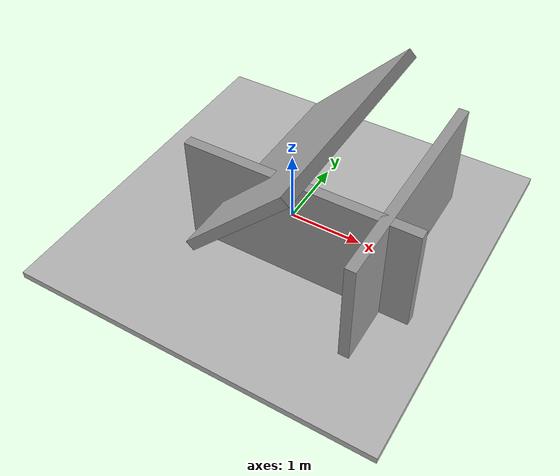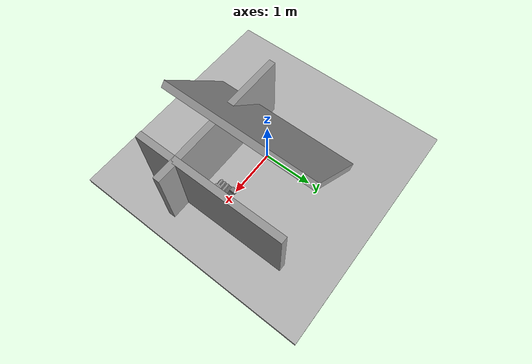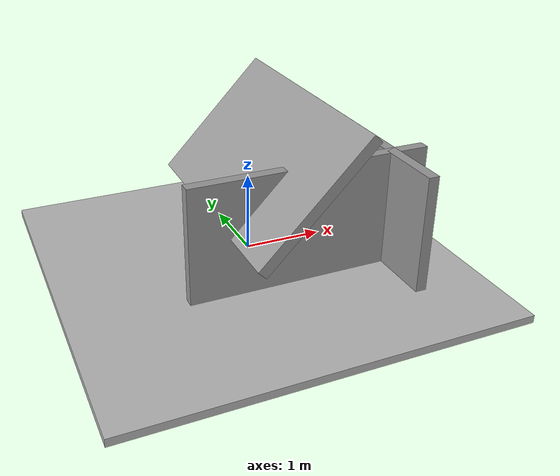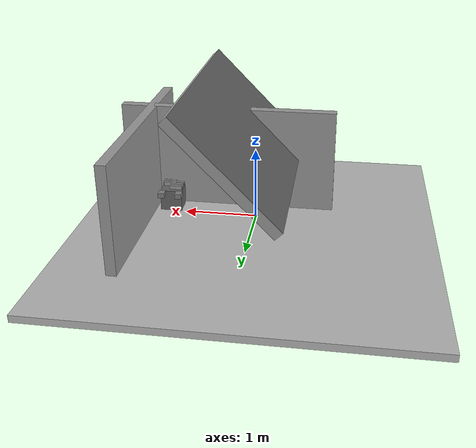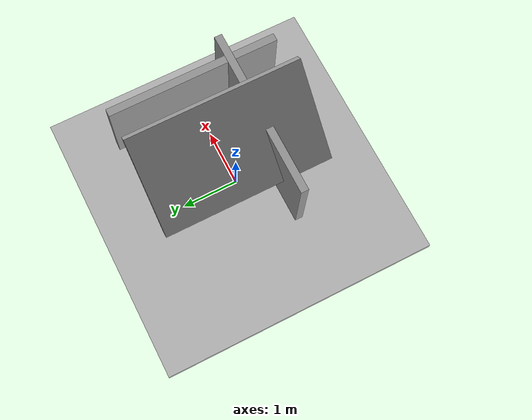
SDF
<?xml version="1.0" ?>
<sdf version="1.6">
  <world name="default">
    <include>
      <uri>model://sun</uri>
    </include>

    <physics name="ode" type="ode">
      <ode>
        <constraints>
          <contact_max_correcting_vel>0</contact_max_correcting_vel>
        </constraints>
      </ode>
      <max_step_size>0.001</max_step_size>
      <real_time_update_rate>1000</real_time_update_rate>
    </physics>

    <plugin name="collision_map_plugin" filename="libcollision_map_plugin.so">
      <frameId>base_link</frameId>
    </plugin>
    <plugin name="arm_gazebo_ros" filename="libarm_gazebo_ros_plugin.so"/>

    <model name="moveit_plugin_model">
      <plugin name="gazebo_ros_moveit_planning_scene" filename="libgazebo_ros_moveit_planning_scene.so">
        <robotName>husky</robotName>
        <robotNamespace>hdt_michigan</robotNamespace>
        <!--  This must be the same as the root frame of the robot you're using -->
        <frameId>base_link</frameId>
      </plugin>
    </model>

    <include>
      <pose>0 0 -0.15 0 0 0</pose>
      <uri>model://box_floor</uri>
    </include>

    <include>
      <name>right_wall</name>
      <uri>model://fake_wall</uri>
      <pose>0.5 -0.7 0.4 0 0 0</pose>
    </include>

    <include>
      <name>back_wall</name>
      <uri>model://fake_wall</uri>
      <pose>0.17 0 1.25 0.77 0 1.5707</pose>
    </include>

    <include>
      <name>front_wall</name>
      <uri>model://fake_wall</uri>
      <pose>1.6 0 0.4 0 0 1.5707</pose>
    </include>

    <include>
      <name>engine4</name>
      <uri>model://car_engine4</uri>
      <pose>1.22 -0.14 0.10 0.017 0 -1.5377</pose>
    </include>

  </world>
</sdf>

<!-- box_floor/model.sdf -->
<sdf version='1.7'>
  <model name='box_floor'>
    <link name='link'>
      <pose>0 0 -0.05 0 0 0</pose>
      <inertial>
        <mass>1</mass>
        <inertia>
          <ixx>0.166667</ixx>
          <ixy>0</ixy>
          <ixz>0</ixz>
          <iyy>0.166667</iyy>
          <iyz>0</iyz>
          <izz>0.166667</izz>
        </inertia>
      </inertial>
      <visual name='visual'>
        <geometry>
          <box>
            <size>5 5 0.1</size>
          </box>
        </geometry>
        <material>
            <script>
                <uri>model://my_ground_plane/concrete.material</uri>
                <name>ConcreteTexture</name>
            </script>
        </material>
      </visual>
      <collision name='collision'>
        <geometry>
          <box>
            <size>5 5 0.1</size>
          </box>
        </geometry>
      </collision>
    </link>
    <static>1</static>
    <allow_auto_disable>1</allow_auto_disable>
  </model>
</sdf>

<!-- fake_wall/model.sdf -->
<sdf version='1.7'>
  <model name='fake_wall'>
    <link name='unit_box::link'>
      <inertial>
        <mass>1</mass>
        <inertia>
          <ixx>0.166667</ixx>
          <ixy>0</ixy>
          <ixz>0</ixz>
          <iyy>0.166667</iyy>
          <iyz>0</iyz>
          <izz>0.166667</izz>
        </inertia>
        <pose>0 0 0 0 -0 0</pose>
      </inertial>
      <self_collide>0</self_collide>
      <enable_wind>0</enable_wind>
      <kinematic>1</kinematic>
      <pose>0 0 0 0 -0 0</pose>
      <visual name='visual'>
        <geometry>
          <box>
            <size>3.10724 0.140567 1.89855</size>
          </box>
        </geometry>
        <material>
          <script>
            <name>Gazebo/Grey</name>
            <uri>file://media/materials/scripts/gazebo.material</uri>
          </script>
          <shader type='pixel'/>
        </material>
        <pose>0 0 0 0 -0 0</pose>
        <transparency>0</transparency>
        <cast_shadows>1</cast_shadows>
      </visual>
      <collision name='collision'>
        <laser_retro>0</laser_retro>
        <max_contacts>10</max_contacts>
        <pose>0 0 0 0 -0 0</pose>
        <geometry>
          <box>
            <size>3.10724 0.140567 1.89855</size>
          </box>
        </geometry>
        <surface>
          <friction>
            <ode>
              <mu>1</mu>
              <mu2>1</mu2>
              <fdir1>0 0 0</fdir1>
              <slip1>0</slip1>
              <slip2>0</slip2>
            </ode>
            <torsional>
              <coefficient>1</coefficient>
              <patch_radius>0</patch_radius>
              <surface_radius>0</surface_radius>
              <use_patch_radius>1</use_patch_radius>
              <ode>
                <slip>0</slip>
              </ode>
            </torsional>
          </friction>
          <bounce>
            <restitution_coefficient>0</restitution_coefficient>
            <threshold>1e+06</threshold>
          </bounce>
          <contact>
            <collide_without_contact>0</collide_without_contact>
            <collide_without_contact_bitmask>1</collide_without_contact_bitmask>
            <collide_bitmask>1</collide_bitmask>
            <ode>
              <soft_cfm>0</soft_cfm>
              <soft_erp>0.2</soft_erp>
              <kp>1e+13</kp>
              <kd>1</kd>
              <max_vel>0.01</max_vel>
              <min_depth>0</min_depth>
            </ode>
            <bullet>
              <split_impulse>1</split_impulse>
              <split_impulse_penetration_threshold>-0.01</split_impulse_penetration_threshold>
              <soft_cfm>0</soft_cfm>
              <soft_erp>0.2</soft_erp>
              <kp>1e+13</kp>
              <kd>1</kd>
            </bullet>
          </contact>
        </surface>
      </collision>
    </link>
    <static>0</static>
    <allow_auto_disable>1</allow_auto_disable>
  </model>
</sdf>

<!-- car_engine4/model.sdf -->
<sdf version='1.6'>
  <model name='car_engine4'>
    <link name='body2'>
      <kinematic>1</kinematic>
      <pose frame=''>0 0 0.06 0 -0 0</pose>
      <self_collide>0</self_collide>
      <inertial>
        <pose frame=''>0 0 0 0 -0 0</pose>
        <inertia>
          <ixx>0.0225125</ixx>
          <ixy>0</ixy>
          <ixz>0</ixz>
          <iyy>0.0208956</iyy>
          <iyz>0</iyz>
          <izz>0.0210862</izz>
        </inertia>
        <mass>1.51354</mass>
      </inertial>
      <enable_wind>0</enable_wind>
      <visual name='visual'>
        <geometry>
          <box>
            <size>0.277813 0.3 0.29747</size>
          </box>
        </geometry>
        <material>
          <ambient>0.4 0.4 0.4 1</ambient>
          <diffuse>0.4 0.4 0.4 1</diffuse>
          <shader type='pixel'/>
          <script>
            <name>ModelPreview_1::body2::visual_MATERIAL_</name>
            <uri>__default__</uri>
          </script>
        </material>
        <pose frame=''>0 0 0 0 -0 0</pose>
        <transparency>0</transparency>
        <cast_shadows>1</cast_shadows>
      </visual>
      <collision name='collision'>
        <laser_retro>0</laser_retro>
        <max_contacts>10</max_contacts>
        <pose frame=''>0 0 0 0 -0 0</pose>
        <geometry>
          <box>
            <size>0.277813 0.3 0.29747</size>
          </box>
        </geometry>
        <surface>
          <friction>
            <ode>
              <mu>10</mu>
              <mu2>10</mu2>
              <fdir1>0 0 0</fdir1>
              <slip1>0</slip1>
              <slip2>0</slip2>
            </ode>
            <torsional>
              <coefficient>1</coefficient>
              <patch_radius>0</patch_radius>
              <surface_radius>0</surface_radius>
              <use_patch_radius>1</use_patch_radius>
              <ode>
                <slip>0</slip>
              </ode>
            </torsional>
          </friction>
          <bounce>
            <restitution_coefficient>0</restitution_coefficient>
            <threshold>1e+06</threshold>
          </bounce>
          <contact>
            <collide_without_contact>0</collide_without_contact>
            <collide_without_contact_bitmask>1</collide_without_contact_bitmask>
            <collide_bitmask>1</collide_bitmask>
            <ode>
              <soft_cfm>0</soft_cfm>
              <soft_erp>0.2</soft_erp>
              <kp>1e+13</kp>
              <kd>1</kd>
              <max_vel>0.01</max_vel>
              <min_depth>0</min_depth>
            </ode>
            <bullet>
              <split_impulse>1</split_impulse>
              <split_impulse_penetration_threshold>-0.01</split_impulse_penetration_threshold>
              <soft_cfm>0</soft_cfm>
              <soft_erp>0.2</soft_erp>
              <kp>1e+13</kp>
              <kd>1</kd>
            </bullet>
          </contact>
        </surface>
      </collision>
    </link>
    <link name='lift_tab1'>
      <kinematic>1</kinematic>
      <pose frame=''>0.186516 0.12 0.18 0 -0 0</pose>
      <self_collide>0</self_collide>
      <inertial>
        <pose frame=''>0 0 0 0 -0 0</pose>
        <inertia>
          <ixx>0.00131365</ixx>
          <ixy>0</ixy>
          <ixz>0</ixz>
          <iyy>0.00198104</iyy>
          <iyz>0</iyz>
          <izz>0.0023044</izz>
        </inertia>
        <mass>1.2126</mass>
      </inertial>
      <enable_wind>0</enable_wind>
      <visual name='visual'>
        <geometry>
          <box>
            <size>0.121263 0.09 0.07</size>
          </box>
        </geometry>
        <material>
          <ambient>0.5 0.5 0.5 1</ambient>
          <diffuse>0.5 0.5 0.5 1</diffuse>
          <shader type='pixel'/>
          <script>
            <name>ModelPreview_1::lift_tab1::visual_MATERIAL_</name>
            <uri>__default__</uri>
          </script>
        </material>
        <pose frame=''>0 0 0 0 -0 0</pose>
        <transparency>0</transparency>
        <cast_shadows>1</cast_shadows>
      </visual>
      <collision name='collision'>
        <laser_retro>0</laser_retro>
        <max_contacts>10</max_contacts>
        <pose frame=''>0 0 0 0 -0 0</pose>
        <geometry>
          <box>
            <size>0.121263 0.09 0.07</size>
          </box>
        </geometry>
        <surface>
          <friction>
            <ode>
              <mu>10</mu>
              <mu2>10</mu2>
              <fdir1>0 0 0</fdir1>
              <slip1>0</slip1>
              <slip2>0</slip2>
            </ode>
            <torsional>
              <coefficient>1</coefficient>
              <patch_radius>0</patch_radius>
              <surface_radius>0</surface_radius>
              <use_patch_radius>1</use_patch_radius>
              <ode>
                <slip>0</slip>
              </ode>
            </torsional>
          </friction>
          <bounce>
            <restitution_coefficient>0</restitution_coefficient>
            <threshold>1e+06</threshold>
          </bounce>
          <contact>
            <collide_without_contact>0</collide_without_contact>
            <collide_without_contact_bitmask>1</collide_without_contact_bitmask>
            <collide_bitmask>1</collide_bitmask>
            <ode>
              <soft_cfm>0</soft_cfm>
              <soft_erp>0.2</soft_erp>
              <kp>1e+13</kp>
              <kd>1</kd>
              <max_vel>0.01</max_vel>
              <min_depth>0</min_depth>
            </ode>
            <bullet>
              <split_impulse>1</split_impulse>
              <split_impulse_penetration_threshold>-0.01</split_impulse_penetration_threshold>
              <soft_cfm>0</soft_cfm>
              <soft_erp>0.2</soft_erp>
              <kp>1e+13</kp>
              <kd>1</kd>
            </bullet>
          </contact>
        </surface>
      </collision>
    </link>
    <link name='lift_tab3'>
      <kinematic>1</kinematic>
      <pose frame=''>-0.192344 0.120572 0.18 0 -0 0</pose>
      <self_collide>0</self_collide>
      <inertial>
        <pose frame=''>0 0 0 0 -0 0</pose>
        <inertia>
          <ixx>0.0012125</ixx>
          <ixy>0</ixy>
          <ixz>0</ixz>
          <iyy>0.00162543</iyy>
          <iyz>0</iyz>
          <izz>0.00192389</izz>
        </inertia>
        <mass>1.11923</mass>
      </inertial>
      <enable_wind>0</enable_wind>
      <visual name='visual'>
        <geometry>
          <box>
            <size>0.111926 0.09 0.07</size>
          </box>
        </geometry>
        <material>
          <ambient>0.5 0.5 0.5 1</ambient>
          <diffuse>0.5 0.5 0.5 1</diffuse>
          <shader type='pixel'/>
          <script>
            <name>ModelPreview_1::lift_tab3::visual_MATERIAL_</name>
            <uri>__default__</uri>
          </script>
        </material>
        <pose frame=''>0 0 0 0 -0 0</pose>
        <transparency>0</transparency>
        <cast_shadows>1</cast_shadows>
      </visual>
      <collision name='collision'>
        <laser_retro>0</laser_retro>
        <max_contacts>10</max_contacts>
        <pose frame=''>0 0 0 0 -0 0</pose>
        <geometry>
          <box>
            <size>0.111926 0.09 0.07</size>
          </box>
        </geometry>
        <surface>
          <friction>
            <ode>
              <mu>10</mu>
              <mu2>10</mu2>
              <fdir1>0 0 0</fdir1>
              <slip1>0</slip1>
              <slip2>0</slip2>
            </ode>
            <torsional>
              <coefficient>1</coefficient>
              <patch_radius>0</patch_radius>
              <surface_radius>0</surface_radius>
              <use_patch_radius>1</use_patch_radius>
              <ode>
                <slip>0</slip>
              </ode>
            </torsional>
          </friction>
          <bounce>
            <restitution_coefficient>0</restitution_coefficient>
            <threshold>1e+06</threshold>
          </bounce>
          <contact>
            <collide_without_contact>0</collide_without_contact>
            <collide_without_contact_bitmask>1</collide_without_contact_bitmask>
            <collide_bitmask>1</collide_bitmask>
            <ode>
              <soft_cfm>0</soft_cfm>
              <soft_erp>0.2</soft_erp>
              <kp>1e+13</kp>
              <kd>1</kd>
              <max_vel>0.01</max_vel>
              <min_depth>0</min_depth>
            </ode>
            <bullet>
              <split_impulse>1</split_impulse>
              <split_impulse_penetration_threshold>-0.01</split_impulse_penetration_threshold>
              <soft_cfm>0</soft_cfm>
              <soft_erp>0.2</soft_erp>
              <kp>1e+13</kp>
              <kd>1</kd>
            </bullet>
          </contact>
        </surface>
      </collision>
    </link>
    <link name='lift_tab4'>
      <kinematic>1</kinematic>
      <pose frame=''>-0.193009 -0.12 0.18 0 -0 0</pose>
      <self_collide>0</self_collide>
      <inertial>
        <pose frame=''>0 0 0 0 -0 0</pose>
        <inertia>
          <ixx>0.00120403</ixx>
          <ixy>0</ixy>
          <ixz>0</ixz>
          <iyy>0.00159766</iyy>
          <iyz>0</iyz>
          <izz>0.00189403</izz>
        </inertia>
        <mass>1.11141</mass>
      </inertial>
      <enable_wind>0</enable_wind>
      <visual name='visual'>
        <geometry>
          <box>
            <size>0.111131 0.09 0.07</size>
          </box>
        </geometry>
        <material>
          <ambient>0.5 0.5 0.5 1</ambient>
          <diffuse>0.5 0.5 0.5 1</diffuse>
          <shader type='pixel'/>
          <script>
            <name>ModelPreview_1::lift_tab4::visual_MATERIAL_</name>
            <uri>__default__</uri>
          </script>
        </material>
        <pose frame=''>0 0 0 0 -0 0</pose>
        <transparency>0</transparency>
        <cast_shadows>1</cast_shadows>
      </visual>
      <collision name='collision'>
        <laser_retro>0</laser_retro>
        <max_contacts>10</max_contacts>
        <pose frame=''>0 0 0 0 -0 0</pose>
        <geometry>
          <box>
            <size>0.111131 0.09 0.07</size>
          </box>
        </geometry>
        <surface>
          <friction>
            <ode>
              <mu>10</mu>
              <mu2>10</mu2>
              <fdir1>0 0 0</fdir1>
              <slip1>0</slip1>
              <slip2>0</slip2>
            </ode>
            <torsional>
              <coefficient>1</coefficient>
              <patch_radius>0</patch_radius>
              <surface_radius>0</surface_radius>
              <use_patch_radius>1</use_patch_radius>
              <ode>
                <slip>0</slip>
              </ode>
            </torsional>
          </friction>
          <bounce>
            <restitution_coefficient>0</restitution_coefficient>
            <threshold>1e+06</threshold>
          </bounce>
          <contact>
            <collide_without_contact>0</collide_without_contact>
            <collide_without_contact_bitmask>1</collide_without_contact_bitmask>
            <collide_bitmask>1</collide_bitmask>
            <ode>
              <soft_cfm>0</soft_cfm>
              <soft_erp>0.2</soft_erp>
              <kp>1e+13</kp>
              <kd>1</kd>
              <max_vel>0.01</max_vel>
              <min_depth>0</min_depth>
            </ode>
            <bullet>
              <split_impulse>1</split_impulse>
              <split_impulse_penetration_threshold>-0.01</split_impulse_penetration_threshold>
              <soft_cfm>0</soft_cfm>
              <soft_erp>0.2</soft_erp>
              <kp>1e+13</kp>
              <kd>1</kd>
            </bullet>
          </contact>
        </surface>
      </collision>
    </link>
    <link name='link_0'>
      <kinematic>1</kinematic>
      <inertial>
        <mass>0.000407117</mass>
        <inertia>
          <ixx>1.90561e-07</ixx>
          <ixy>0</ixy>
          <ixz>0</ixz>
          <iyy>1.16678e-06</iyy>
          <iyz>0</iyz>
          <izz>1.06079e-06</izz>
        </inertia>
        <pose frame=''>0 0 0 0 -0 0</pose>
      </inertial>
      <pose frame=''>0.119961 0.057644 0.227737 0 -0 1.5708</pose>
      <visual name='visual'>
        <pose frame=''>0 0 0 0 -0 0</pose>
        <geometry>
          <box>
            <size>0.173266 0.035305 0.066109</size>
          </box>
        </geometry>
        <material>
          <lighting>1</lighting>
          <script>
            <uri>file://media/materials/scripts/gazebo.material</uri>
            <name>Gazebo/Grey</name>
          </script>
          <shader type='pixel'/>
        </material>
        <transparency>0</transparency>
        <cast_shadows>1</cast_shadows>
      </visual>
      <collision name='collision'>
        <laser_retro>0</laser_retro>
        <max_contacts>10</max_contacts>
        <pose frame=''>0 0 0 0 -0 0</pose>
        <geometry>
          <box>
            <size>0.173266 0.035305 0.066109</size>
          </box>
        </geometry>
        <surface>
          <friction>
            <ode>
              <mu>10</mu>
              <mu2>10</mu2>
              <fdir1>0 0 0</fdir1>
              <slip1>0</slip1>
              <slip2>0</slip2>
            </ode>
            <torsional>
              <coefficient>1</coefficient>
              <patch_radius>0</patch_radius>
              <surface_radius>0</surface_radius>
              <use_patch_radius>1</use_patch_radius>
              <ode>
                <slip>0</slip>
              </ode>
            </torsional>
          </friction>
          <bounce>
            <restitution_coefficient>0</restitution_coefficient>
            <threshold>1e+06</threshold>
          </bounce>
          <contact>
            <collide_without_contact>0</collide_without_contact>
            <collide_without_contact_bitmask>1</collide_without_contact_bitmask>
            <collide_bitmask>1</collide_bitmask>
            <ode>
              <soft_cfm>0</soft_cfm>
              <soft_erp>0.2</soft_erp>
              <kp>1e+13</kp>
              <kd>1</kd>
              <max_vel>0.01</max_vel>
              <min_depth>0</min_depth>
            </ode>
            <bullet>
              <split_impulse>1</split_impulse>
              <split_impulse_penetration_threshold>-0.01</split_impulse_penetration_threshold>
              <soft_cfm>0</soft_cfm>
              <soft_erp>0.2</soft_erp>
              <kp>1e+13</kp>
              <kd>1</kd>
            </bullet>
          </contact>
        </surface>
      </collision>
    </link>
    <link name='link_0_clone'>
      <kinematic>1</kinematic>
      <inertial>
        <mass>0.000407117</mass>
        <inertia>
          <ixx>1.90561e-07</ixx>
          <ixy>0</ixy>
          <ixz>0</ixz>
          <iyy>1.16678e-06</iyy>
          <iyz>0</iyz>
          <izz>1.06079e-06</izz>
        </inertia>
        <pose frame=''>0 0 0 0 -0 0</pose>
      </inertial>
      <pose frame=''>0.087608 -0.064354 0.227737 0 -0 1.5708</pose>
      <visual name='visual'>
        <pose frame=''>0 0 0 0 -0 0</pose>
        <geometry>
          <box>
            <size>0.173266 0.035305 0.066109</size>
          </box>
        </geometry>
        <material>
          <lighting>1</lighting>
          <script>
            <uri>file://media/materials/scripts/gazebo.material</uri>
            <name>Gazebo/Grey</name>
          </script>
          <shader type='pixel'/>
        </material>
        <transparency>0</transparency>
        <cast_shadows>1</cast_shadows>
      </visual>
      <collision name='collision'>
        <laser_retro>0</laser_retro>
        <max_contacts>10</max_contacts>
        <pose frame=''>0 0 0 0 -0 0</pose>
        <geometry>
          <box>
            <size>0.173266 0.035305 0.066109</size>
          </box>
        </geometry>
        <surface>
          <friction>
            <ode>
              <mu>10</mu>
              <mu2>10</mu2>
              <fdir1>0 0 0</fdir1>
              <slip1>0</slip1>
              <slip2>0</slip2>
            </ode>
            <torsional>
              <coefficient>1</coefficient>
              <patch_radius>0</patch_radius>
              <surface_radius>0</surface_radius>
              <use_patch_radius>1</use_patch_radius>
              <ode>
                <slip>0</slip>
              </ode>
            </torsional>
          </friction>
          <bounce>
            <restitution_coefficient>0</restitution_coefficient>
            <threshold>1e+06</threshold>
          </bounce>
          <contact>
            <collide_without_contact>0</collide_without_contact>
            <collide_without_contact_bitmask>1</collide_without_contact_bitmask>
            <collide_bitmask>1</collide_bitmask>
            <ode>
              <soft_cfm>0</soft_cfm>
              <soft_erp>0.2</soft_erp>
              <kp>1e+13</kp>
              <kd>1</kd>
              <max_vel>0.01</max_vel>
              <min_depth>0</min_depth>
            </ode>
            <bullet>
              <split_impulse>1</split_impulse>
              <split_impulse_penetration_threshold>-0.01</split_impulse_penetration_threshold>
              <soft_cfm>0</soft_cfm>
              <soft_erp>0.2</soft_erp>
              <kp>1e+13</kp>
              <kd>1</kd>
            </bullet>
          </contact>
        </surface>
      </collision>
    </link>
    <link name='link_0_clone_0'>
      <kinematic>1</kinematic>
      <inertial>
        <mass>0.000407117</mass>
        <inertia>
          <ixx>1.90561e-07</ixx>
          <ixy>0</ixy>
          <ixz>0</ixz>
          <iyy>1.16678e-06</iyy>
          <iyz>0</iyz>
          <izz>1.06079e-06</izz>
        </inertia>
        <pose frame=''>0 0 0 0 -0 0</pose>
      </inertial>
      <pose frame=''>0.053838 0.049069 0.227737 0 0 -1.57079</pose>
      <visual name='visual'>
        <pose frame=''>0 0 0 0 -0 0</pose>
        <geometry>
          <box>
            <size>0.173266 0.035305 0.066109</size>
          </box>
        </geometry>
        <material>
          <lighting>1</lighting>
          <script>
            <uri>file://media/materials/scripts/gazebo.material</uri>
            <name>Gazebo/Grey</name>
          </script>
          <shader type='pixel'/>
        </material>
        <transparency>0</transparency>
        <cast_shadows>1</cast_shadows>
      </visual>
      <collision name='collision'>
        <laser_retro>0</laser_retro>
        <max_contacts>10</max_contacts>
        <pose frame=''>0 0 0 0 -0 0</pose>
        <geometry>
          <box>
            <size>0.173266 0.035305 0.066109</size>
          </box>
        </geometry>
        <surface>
          <friction>
            <ode>
              <mu>10</mu>
              <mu2>10</mu2>
              <fdir1>0 0 0</fdir1>
              <slip1>0</slip1>
              <slip2>0</slip2>
            </ode>
            <torsional>
              <coefficient>1</coefficient>
              <patch_radius>0</patch_radius>
              <surface_radius>0</surface_radius>
              <use_patch_radius>1</use_patch_radius>
              <ode>
                <slip>0</slip>
              </ode>
            </torsional>
          </friction>
          <bounce>
            <restitution_coefficient>0</restitution_coefficient>
            <threshold>1e+06</threshold>
          </bounce>
          <contact>
            <collide_without_contact>0</collide_without_contact>
            <collide_without_contact_bitmask>1</collide_without_contact_bitmask>
            <collide_bitmask>1</collide_bitmask>
            <ode>
              <soft_cfm>0</soft_cfm>
              <soft_erp>0.2</soft_erp>
              <kp>1e+13</kp>
              <kd>1</kd>
              <max_vel>0.01</max_vel>
              <min_depth>0</min_depth>
            </ode>
            <bullet>
              <split_impulse>1</split_impulse>
              <split_impulse_penetration_threshold>-0.01</split_impulse_penetration_threshold>
              <soft_cfm>0</soft_cfm>
              <soft_erp>0.2</soft_erp>
              <kp>1e+13</kp>
              <kd>1</kd>
            </bullet>
          </contact>
        </surface>
      </collision>
    </link>
    <link name='link_0_clone_1'>
      <kinematic>1</kinematic>
      <inertial>
        <mass>0.000407117</mass>
        <inertia>
          <ixx>1.90561e-07</ixx>
          <ixy>0</ixy>
          <ixz>0</ixz>
          <iyy>1.16678e-06</iyy>
          <iyz>0</iyz>
          <izz>1.06079e-06</izz>
        </inertia>
        <pose frame=''>0 0 0 0 -0 0</pose>
      </inertial>
      <pose frame=''>-0.055251 -0.057549 0.227737 0 -0 1.5708</pose>
      <visual name='visual'>
        <pose frame=''>0 0 0 0 -0 0</pose>
        <geometry>
          <box>
            <size>0.173266 0.035305 0.066109</size>
          </box>
        </geometry>
        <material>
          <lighting>1</lighting>
          <script>
            <uri>file://media/materials/scripts/gazebo.material</uri>
            <name>Gazebo/Grey</name>
          </script>
          <shader type='pixel'/>
        </material>
        <transparency>0</transparency>
        <cast_shadows>1</cast_shadows>
      </visual>
      <collision name='collision'>
        <laser_retro>0</laser_retro>
        <max_contacts>10</max_contacts>
        <pose frame=''>0 0 0 0 -0 0</pose>
        <geometry>
          <box>
            <size>0.173266 0.035305 0.066109</size>
          </box>
        </geometry>
        <surface>
          <friction>
            <ode>
              <mu>10</mu>
              <mu2>10</mu2>
              <fdir1>0 0 0</fdir1>
              <slip1>0</slip1>
              <slip2>0</slip2>
            </ode>
            <torsional>
              <coefficient>1</coefficient>
              <patch_radius>0</patch_radius>
              <surface_radius>0</surface_radius>
              <use_patch_radius>1</use_patch_radius>
              <ode>
                <slip>0</slip>
              </ode>
            </torsional>
          </friction>
          <bounce>
            <restitution_coefficient>0</restitution_coefficient>
            <threshold>1e+06</threshold>
          </bounce>
          <contact>
            <collide_without_contact>0</collide_without_contact>
            <collide_without_contact_bitmask>1</collide_without_contact_bitmask>
            <collide_bitmask>1</collide_bitmask>
            <ode>
              <soft_cfm>0</soft_cfm>
              <soft_erp>0.2</soft_erp>
              <kp>1e+13</kp>
              <kd>1</kd>
              <max_vel>0.01</max_vel>
              <min_depth>0</min_depth>
            </ode>
            <bullet>
              <split_impulse>1</split_impulse>
              <split_impulse_penetration_threshold>-0.01</split_impulse_penetration_threshold>
              <soft_cfm>0</soft_cfm>
              <soft_erp>0.2</soft_erp>
              <kp>1e+13</kp>
              <kd>1</kd>
            </bullet>
          </contact>
        </surface>
      </collision>
    </link>
    <link name='link_0_clone_2'>
      <kinematic>1</kinematic>
      <inertial>
        <mass>0.000407117</mass>
        <inertia>
          <ixx>1.90561e-07</ixx>
          <ixy>0</ixy>
          <ixz>0</ixz>
          <iyy>1.16678e-06</iyy>
          <iyz>0</iyz>
          <izz>1.06079e-06</izz>
        </inertia>
        <pose frame=''>0 0 0 0 -0 0</pose>
      </inertial>
      <pose frame=''>0.021378 -0.060936 0.227737 0 -0 1.5708</pose>
      <visual name='visual'>
        <pose frame=''>0 0 0 0 -0 0</pose>
        <geometry>
          <box>
            <size>0.173266 0.035305 0.066109</size>
          </box>
        </geometry>
        <material>
          <lighting>1</lighting>
          <script>
            <uri>file://media/materials/scripts/gazebo.material</uri>
            <name>Gazebo/Grey</name>
          </script>
          <shader type='pixel'/>
        </material>
        <transparency>0</transparency>
        <cast_shadows>1</cast_shadows>
      </visual>
      <collision name='collision'>
        <laser_retro>0</laser_retro>
        <max_contacts>10</max_contacts>
        <pose frame=''>0 0 0 0 -0 0</pose>
        <geometry>
          <box>
            <size>0.173266 0.035305 0.066109</size>
          </box>
        </geometry>
        <surface>
          <friction>
            <ode>
              <mu>10</mu>
              <mu2>10</mu2>
              <fdir1>0 0 0</fdir1>
              <slip1>0</slip1>
              <slip2>0</slip2>
            </ode>
            <torsional>
              <coefficient>1</coefficient>
              <patch_radius>0</patch_radius>
              <surface_radius>0</surface_radius>
              <use_patch_radius>1</use_patch_radius>
              <ode>
                <slip>0</slip>
              </ode>
            </torsional>
          </friction>
          <bounce>
            <restitution_coefficient>0</restitution_coefficient>
            <threshold>1e+06</threshold>
          </bounce>
          <contact>
            <collide_without_contact>0</collide_without_contact>
            <collide_without_contact_bitmask>1</collide_without_contact_bitmask>
            <collide_bitmask>1</collide_bitmask>
            <ode>
              <soft_cfm>0</soft_cfm>
              <soft_erp>0.2</soft_erp>
              <kp>1e+13</kp>
              <kd>1</kd>
              <max_vel>0.01</max_vel>
              <min_depth>0</min_depth>
            </ode>
            <bullet>
              <split_impulse>1</split_impulse>
              <split_impulse_penetration_threshold>-0.01</split_impulse_penetration_threshold>
              <soft_cfm>0</soft_cfm>
              <soft_erp>0.2</soft_erp>
              <kp>1e+13</kp>
              <kd>1</kd>
            </bullet>
          </contact>
        </surface>
      </collision>
    </link>
    <static>0</static>
    <allow_auto_disable>1</allow_auto_disable>
  </model>
</sdf>
